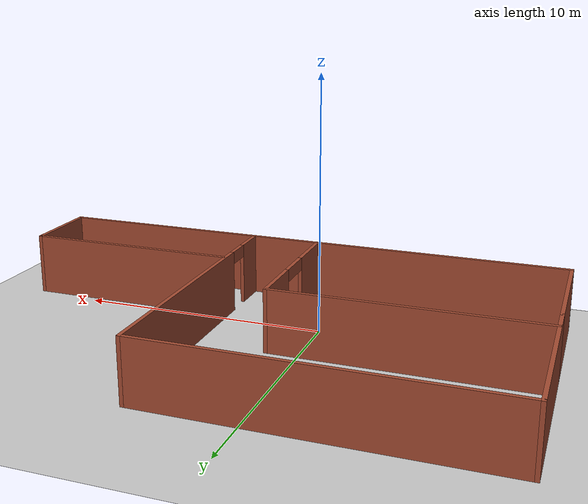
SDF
<sdf version="1.7">
 <world name="default">
  <model name="ground_plane">
   <static>1</static>
   <link name="link">
    <collision name="collision">
     <geometry><plane><normal>0 0 1</normal><size>100 100</size></plane></geometry>
     <surface><friction><ode><mu>100</mu><mu2>50</mu2></ode></friction></surface>
    </collision>
    <visual name="visual">
     <cast_shadows>0</cast_shadows>
     <geometry><plane><normal>0 0 1</normal><size>100 100</size></plane></geometry>
     <material>
      <script><uri>file://media/materials/scripts/gazebo.material</uri><name>Gazebo/Grey</name></script>
     </material>
    </visual>
   </link>
  </model>
  <model name="Simple_world">
   <link name="Wall_0">
    <pose>-4.3 -5.725 0 0 -0 0</pose>
    <visual name="Wall_0_Visual">
     <pose>0 0 1.25 0 -0 0</pose>
     <geometry><box><size>13.25 0.15 2.5</size></box></geometry>
     <material>
      <script><uri>file://media/materials/scripts/gazebo.material</uri><name>Gazebo/Bricks</name></script>
      <ambient>1 1 1 1</ambient>
      <shader type="pixel"/>
     </material>
     <meta><layer>0</layer></meta>
    </visual>
    <collision name="Wall_0_Collision">
     <pose>0 0 1.25 0 -0 0</pose>
     <geometry><box><size>13.25 0.15 2.5</size></box></geometry>
     <surface>
      <friction>
       <ode><mu>1</mu><mu2>1</mu2><fdir1>0 0 0</fdir1><slip1>0</slip1><slip2>0</slip2></ode>
       <torsional>
        <coefficient>1</coefficient>
        <patch_radius>0</patch_radius>
        <surface_radius>0</surface_radius>
        <use_patch_radius>1</use_patch_radius>
        <ode><slip>0</slip></ode>
       </torsional>
      </friction>
      <bounce><restitution_coefficient>0</restitution_coefficient><threshold>1e+06</threshold></bounce>
      <contact>
       <collide_without_contact>0</collide_without_contact>
       <collide_without_contact_bitmask>1</collide_without_contact_bitmask>
       <collide_bitmask>1</collide_bitmask>
       <ode>
        <soft_cfm>0</soft_cfm>
        <soft_erp>0.2</soft_erp>
        <kp>1e+13</kp>
        <kd>1</kd>
        <max_vel>0.01</max_vel>
        <min_depth>0</min_depth>
       </ode>
       <bullet>
        <split_impulse>1</split_impulse>
        <split_impulse_penetration_threshold>-0.01</split_impulse_penetration_threshold>
        <soft_cfm>0</soft_cfm>
        <soft_erp>0.2</soft_erp>
        <kp>1e+13</kp>
        <kd>1</kd>
       </bullet>
      </contact>
     </surface>
    </collision>
   </link>
   <link name="Wall_12">
    <pose>2.25 0 0 0 0 -1.5708</pose>
    <visual name="Wall_12_Visual_0">
     <pose>-1.24262 0 1.25 0 -0 0</pose>
     <geometry><box><size>9.11477 0.15 2.5</size></box></geometry>
     <material>
      <script><uri>file://media/materials/scripts/gazebo.material</uri><name>Gazebo/Bricks</name></script>
      <ambient>1 1 1 1</ambient>
      <shader type="pixel"/>
     </material>
     <meta><layer>0</layer></meta>
    </visual>
    <visual name="Wall_12_Visual_1">
     <pose>5.05739 0 1.25 0 -0 0</pose>
     <geometry><box><size>1.48523 0.15 2.5</size></box></geometry>
     <material>
      <script><uri>file://media/materials/scripts/gazebo.material</uri><name>Gazebo/Bricks</name></script>
      <ambient>1 1 1 1</ambient>
      <shader type="pixel"/>
     </material>
     <meta><layer>0</layer></meta>
    </visual>
    <visual name="Wall_12_Visual_2">
     <pose>3.81477 0 2.25 0 -0 0</pose>
     <geometry><box><size>1 0.15 0.5</size></box></geometry>
     <material>
      <script><uri>file://media/materials/scripts/gazebo.material</uri><name>Gazebo/Bricks</name></script>
      <ambient>1 1 1 1</ambient>
      <shader type="pixel"/>
     </material>
     <meta><layer>0</layer></meta>
    </visual>
    <collision name="Wall_12_Collision_2">
     <pose>3.81477 0 2.25 0 -0 0</pose>
     <geometry><box><size>1 0.15 0.5</size></box></geometry>
     <surface>
      <friction>
       <ode><mu>1</mu><mu2>1</mu2><fdir1>0 0 0</fdir1><slip1>0</slip1><slip2>0</slip2></ode>
       <torsional>
        <coefficient>1</coefficient>
        <patch_radius>0</patch_radius>
        <surface_radius>0</surface_radius>
        <use_patch_radius>1</use_patch_radius>
        <ode><slip>0</slip></ode>
       </torsional>
      </friction>
      <bounce><restitution_coefficient>0</restitution_coefficient><threshold>1e+06</threshold></bounce>
      <contact>
       <collide_without_contact>0</collide_without_contact>
       <collide_without_contact_bitmask>1</collide_without_contact_bitmask>
       <collide_bitmask>1</collide_bitmask>
       <ode>
        <soft_cfm>0</soft_cfm>
        <soft_erp>0.2</soft_erp>
        <kp>1e+13</kp>
        <kd>1</kd>
        <max_vel>0.01</max_vel>
        <min_depth>0</min_depth>
       </ode>
       <bullet>
        <split_impulse>1</split_impulse>
        <split_impulse_penetration_threshold>-0.01</split_impulse_penetration_threshold>
        <soft_cfm>0</soft_cfm>
        <soft_erp>0.2</soft_erp>
        <kp>1e+13</kp>
        <kd>1</kd>
       </bullet>
      </contact>
     </surface>
    </collision>
    <collision name="Wall_12_Collision_1">
     <pose>5.05739 0 1.25 0 -0 0</pose>
     <geometry><box><size>1.48523 0.15 2.5</size></box></geometry>
     <surface>
      <friction>
       <ode><mu>1</mu><mu2>1</mu2><fdir1>0 0 0</fdir1><slip1>0</slip1><slip2>0</slip2></ode>
       <torsional>
        <coefficient>1</coefficient>
        <patch_radius>0</patch_radius>
        <surface_radius>0</surface_radius>
        <use_patch_radius>1</use_patch_radius>
        <ode><slip>0</slip></ode>
       </torsional>
      </friction>
      <bounce><restitution_coefficient>0</restitution_coefficient><threshold>1e+06</threshold></bounce>
      <contact>
       <collide_without_contact>0</collide_without_contact>
       <collide_without_contact_bitmask>1</collide_without_contact_bitmask>
       <collide_bitmask>1</collide_bitmask>
       <ode>
        <soft_cfm>0</soft_cfm>
        <soft_erp>0.2</soft_erp>
        <kp>1e+13</kp>
        <kd>1</kd>
        <max_vel>0.01</max_vel>
        <min_depth>0</min_depth>
       </ode>
       <bullet>
        <split_impulse>1</split_impulse>
        <split_impulse_penetration_threshold>-0.01</split_impulse_penetration_threshold>
        <soft_cfm>0</soft_cfm>
        <soft_erp>0.2</soft_erp>
        <kp>1e+13</kp>
        <kd>1</kd>
       </bullet>
      </contact>
     </surface>
    </collision>
    <collision name="Wall_12_Collision_0">
     <pose>-1.24262 0 1.25 0 -0 0</pose>
     <geometry><box><size>9.11477 0.15 2.5</size></box></geometry>
     <surface>
      <friction>
       <ode><mu>1</mu><mu2>1</mu2><fdir1>0 0 0</fdir1><slip1>0</slip1><slip2>0</slip2></ode>
       <torsional>
        <coefficient>1</coefficient>
        <patch_radius>0</patch_radius>
        <surface_radius>0</surface_radius>
        <use_patch_radius>1</use_patch_radius>
        <ode><slip>0</slip></ode>
       </torsional>
      </friction>
      <bounce><restitution_coefficient>0</restitution_coefficient><threshold>1e+06</threshold></bounce>
      <contact>
       <collide_without_contact>0</collide_without_contact>
       <collide_without_contact_bitmask>1</collide_without_contact_bitmask>
       <collide_bitmask>1</collide_bitmask>
       <ode>
        <soft_cfm>0</soft_cfm>
        <soft_erp>0.2</soft_erp>
        <kp>1e+13</kp>
        <kd>1</kd>
        <max_vel>0.01</max_vel>
        <min_depth>0</min_depth>
       </ode>
       <bullet>
        <split_impulse>1</split_impulse>
        <split_impulse_penetration_threshold>-0.01</split_impulse_penetration_threshold>
        <soft_cfm>0</soft_cfm>
        <soft_erp>0.2</soft_erp>
        <kp>1e+13</kp>
        <kd>1</kd>
       </bullet>
      </contact>
     </surface>
    </collision>
   </link>
   <link name="Wall_13">
    <pose>6.55 -5.725 0 0 -0 0</pose>
    <visual name="Wall_13_Visual">
     <pose>0 0 1.25 0 -0 0</pose>
     <geometry><box><size>8.75 0.15 2.5</size></box></geometry>
     <material>
      <script><uri>file://media/materials/scripts/gazebo.material</uri><name>Gazebo/Bricks</name></script>
      <ambient>1 1 1 1</ambient>
      <shader type="pixel"/>
     </material>
     <meta><layer>0</layer></meta>
    </visual>
    <collision name="Wall_13_Collision">
     <pose>0 0 1.25 0 -0 0</pose>
     <geometry><box><size>8.75 0.15 2.5</size></box></geometry>
     <surface>
      <friction>
       <ode><mu>1</mu><mu2>1</mu2><fdir1>0 0 0</fdir1><slip1>0</slip1><slip2>0</slip2></ode>
       <torsional>
        <coefficient>1</coefficient>
        <patch_radius>0</patch_radius>
        <surface_radius>0</surface_radius>
        <use_patch_radius>1</use_patch_radius>
        <ode><slip>0</slip></ode>
       </torsional>
      </friction>
      <bounce><restitution_coefficient>0</restitution_coefficient><threshold>1e+06</threshold></bounce>
      <contact>
       <collide_without_contact>0</collide_without_contact>
       <collide_without_contact_bitmask>1</collide_without_contact_bitmask>
       <collide_bitmask>1</collide_bitmask>
       <ode>
        <soft_cfm>0</soft_cfm>
        <soft_erp>0.2</soft_erp>
        <kp>1e+13</kp>
        <kd>1</kd>
        <max_vel>0.01</max_vel>
        <min_depth>0</min_depth>
       </ode>
       <bullet>
        <split_impulse>1</split_impulse>
        <split_impulse_penetration_threshold>-0.01</split_impulse_penetration_threshold>
        <soft_cfm>0</soft_cfm>
        <soft_erp>0.2</soft_erp>
        <kp>1e+13</kp>
        <kd>1</kd>
       </bullet>
      </contact>
     </surface>
    </collision>
   </link>
   <link name="Wall_14">
    <pose>10.85 -4.175 0 0 -0 1.5708</pose>
    <visual name="Wall_14_Visual">
     <pose>0 0 1.25 0 -0 0</pose>
     <geometry><box><size>3.25 0.15 2.5</size></box></geometry>
     <material>
      <script><uri>file://media/materials/scripts/gazebo.material</uri><name>Gazebo/Bricks</name></script>
      <ambient>1 1 1 1</ambient>
      <shader type="pixel"/>
     </material>
     <meta><layer>0</layer></meta>
    </visual>
    <collision name="Wall_14_Collision">
     <pose>0 0 1.25 0 -0 0</pose>
     <geometry><box><size>3.25 0.15 2.5</size></box></geometry>
     <surface>
      <friction>
       <ode><mu>1</mu><mu2>1</mu2><fdir1>0 0 0</fdir1><slip1>0</slip1><slip2>0</slip2></ode>
       <torsional>
        <coefficient>1</coefficient>
        <patch_radius>0</patch_radius>
        <surface_radius>0</surface_radius>
        <use_patch_radius>1</use_patch_radius>
        <ode><slip>0</slip></ode>
       </torsional>
      </friction>
      <bounce><restitution_coefficient>0</restitution_coefficient><threshold>1e+06</threshold></bounce>
      <contact>
       <collide_without_contact>0</collide_without_contact>
       <collide_without_contact_bitmask>1</collide_without_contact_bitmask>
       <collide_bitmask>1</collide_bitmask>
       <ode>
        <soft_cfm>0</soft_cfm>
        <soft_erp>0.2</soft_erp>
        <kp>1e+13</kp>
        <kd>1</kd>
        <max_vel>0.01</max_vel>
        <min_depth>0</min_depth>
       </ode>
       <bullet>
        <split_impulse>1</split_impulse>
        <split_impulse_penetration_threshold>-0.01</split_impulse_penetration_threshold>
        <soft_cfm>0</soft_cfm>
        <soft_erp>0.2</soft_erp>
        <kp>1e+13</kp>
        <kd>1</kd>
       </bullet>
      </contact>
     </surface>
    </collision>
   </link>
   <link name="Wall_15">
    <pose>6.55 -2.625 0 0 -0 3.14159</pose>
    <visual name="Wall_15_Visual">
     <pose>0 0 1.25 0 -0 0</pose>
     <geometry><box><size>8.75 0.15 2.5</size></box></geometry>
     <material>
      <script><uri>file://media/materials/scripts/gazebo.material</uri><name>Gazebo/Bricks</name></script>
      <ambient>1 1 1 1</ambient>
      <shader type="pixel"/>
     </material>
     <meta><layer>0</layer></meta>
    </visual>
    <collision name="Wall_15_Collision">
     <pose>0 0 1.25 0 -0 0</pose>
     <geometry><box><size>8.75 0.15 2.5</size></box></geometry>
     <surface>
      <friction>
       <ode><mu>1</mu><mu2>1</mu2><fdir1>0 0 0</fdir1><slip1>0</slip1><slip2>0</slip2></ode>
       <torsional>
        <coefficient>1</coefficient>
        <patch_radius>0</patch_radius>
        <surface_radius>0</surface_radius>
        <use_patch_radius>1</use_patch_radius>
        <ode><slip>0</slip></ode>
       </torsional>
      </friction>
      <bounce><restitution_coefficient>0</restitution_coefficient><threshold>1e+06</threshold></bounce>
      <contact>
       <collide_without_contact>0</collide_without_contact>
       <collide_without_contact_bitmask>1</collide_without_contact_bitmask>
       <collide_bitmask>1</collide_bitmask>
       <ode>
        <soft_cfm>0</soft_cfm>
        <soft_erp>0.2</soft_erp>
        <kp>1e+13</kp>
        <kd>1</kd>
        <max_vel>0.01</max_vel>
        <min_depth>0</min_depth>
       </ode>
       <bullet>
        <split_impulse>1</split_impulse>
        <split_impulse_penetration_threshold>-0.01</split_impulse_penetration_threshold>
        <soft_cfm>0</soft_cfm>
        <soft_erp>0.2</soft_erp>
        <kp>1e+13</kp>
        <kd>1</kd>
       </bullet>
      </contact>
     </surface>
    </collision>
   </link>
   <link name="Wall_18">
    <pose>-0.579032 -2.72339 0 0 -0 1.5708</pose>
    <visual name="Wall_18_Visual_1">
     <pose>1.84221 0 1.25 0 -0 0</pose>
     <geometry><box><size>2.31559 0.15 2.5</size></box></geometry>
     <material>
      <script><uri>file://media/materials/scripts/gazebo.material</uri><name>Gazebo/Bricks</name></script>
      <ambient>1 1 1 1</ambient>
      <shader type="pixel"/>
     </material>
     <meta><layer>0</layer></meta>
    </visual>
    <visual name="Wall_18_Visual_2">
     <pose>-0.065589 0 2.25 0 -0 0</pose>
     <geometry><box><size>1.5 0.15 0.5</size></box></geometry>
     <material>
      <script><uri>file://media/materials/scripts/gazebo.material</uri><name>Gazebo/Bricks</name></script>
      <ambient>1 1 1 1</ambient>
      <shader type="pixel"/>
     </material>
     <meta><layer>0</layer></meta>
    </visual>
    <visual name="Wall_18_Visual_0">
     <pose>-1.90779 0 1.25 0 -0 0</pose>
     <geometry><box><size>2.18441 0.15 2.5</size></box></geometry>
     <material>
      <script><uri>file://media/materials/scripts/gazebo.material</uri><name>Gazebo/Bricks</name></script>
      <ambient>1 1 1 1</ambient>
      <shader type="pixel"/>
     </material>
     <meta><layer>0</layer></meta>
    </visual>
    <collision name="Wall_18_Collision_1">
     <pose>1.84221 0 1.25 0 -0 0</pose>
     <geometry><box><size>2.31559 0.15 2.5</size></box></geometry>
     <surface>
      <friction>
       <ode><mu>1</mu><mu2>1</mu2><fdir1>0 0 0</fdir1><slip1>0</slip1><slip2>0</slip2></ode>
       <torsional>
        <coefficient>1</coefficient>
        <patch_radius>0</patch_radius>
        <surface_radius>0</surface_radius>
        <use_patch_radius>1</use_patch_radius>
        <ode><slip>0</slip></ode>
       </torsional>
      </friction>
      <bounce><restitution_coefficient>0</restitution_coefficient><threshold>1e+06</threshold></bounce>
      <contact>
       <collide_without_contact>0</collide_without_contact>
       <collide_without_contact_bitmask>1</collide_without_contact_bitmask>
       <collide_bitmask>1</collide_bitmask>
       <ode>
        <soft_cfm>0</soft_cfm>
        <soft_erp>0.2</soft_erp>
        <kp>1e+13</kp>
        <kd>1</kd>
        <max_vel>0.01</max_vel>
        <min_depth>0</min_depth>
       </ode>
       <bullet>
        <split_impulse>1</split_impulse>
        <split_impulse_penetration_threshold>-0.01</split_impulse_penetration_threshold>
        <soft_cfm>0</soft_cfm>
        <soft_erp>0.2</soft_erp>
        <kp>1e+13</kp>
        <kd>1</kd>
       </bullet>
      </contact>
     </surface>
    </collision>
    <collision name="Wall_18_Collision_2">
     <pose>-0.065589 0 2.25 0 -0 0</pose>
     <geometry><box><size>1.5 0.15 0.5</size></box></geometry>
     <surface>
      <friction>
       <ode><mu>1</mu><mu2>1</mu2><fdir1>0 0 0</fdir1><slip1>0</slip1><slip2>0</slip2></ode>
       <torsional>
        <coefficient>1</coefficient>
        <patch_radius>0</patch_radius>
        <surface_radius>0</surface_radius>
        <use_patch_radius>1</use_patch_radius>
        <ode><slip>0</slip></ode>
       </torsional>
      </friction>
      <bounce><restitution_coefficient>0</restitution_coefficient><threshold>1e+06</threshold></bounce>
      <contact>
       <collide_without_contact>0</collide_without_contact>
       <collide_without_contact_bitmask>1</collide_without_contact_bitmask>
       <collide_bitmask>1</collide_bitmask>
       <ode>
        <soft_cfm>0</soft_cfm>
        <soft_erp>0.2</soft_erp>
        <kp>1e+13</kp>
        <kd>1</kd>
        <max_vel>0.01</max_vel>
        <min_depth>0</min_depth>
       </ode>
       <bullet>
        <split_impulse>1</split_impulse>
        <split_impulse_penetration_threshold>-0.01</split_impulse_penetration_threshold>
        <soft_cfm>0</soft_cfm>
        <soft_erp>0.2</soft_erp>
        <kp>1e+13</kp>
        <kd>1</kd>
       </bullet>
      </contact>
     </surface>
    </collision>
    <collision name="Wall_18_Collision_0">
     <pose>-1.90779 0 1.25 0 -0 0</pose>
     <geometry><box><size>2.18441 0.15 2.5</size></box></geometry>
     <surface>
      <friction>
       <ode><mu>1</mu><mu2>1</mu2><fdir1>0 0 0</fdir1><slip1>0</slip1><slip2>0</slip2></ode>
       <torsional>
        <coefficient>1</coefficient>
        <patch_radius>0</patch_radius>
        <surface_radius>0</surface_radius>
        <use_patch_radius>1</use_patch_radius>
        <ode><slip>0</slip></ode>
       </torsional>
      </friction>
      <bounce><restitution_coefficient>0</restitution_coefficient><threshold>1e+06</threshold></bounce>
      <contact>
       <collide_without_contact>0</collide_without_contact>
       <collide_without_contact_bitmask>1</collide_without_contact_bitmask>
       <collide_bitmask>1</collide_bitmask>
       <ode>
        <soft_cfm>0</soft_cfm>
        <soft_erp>0.2</soft_erp>
        <kp>1e+13</kp>
        <kd>1</kd>
        <max_vel>0.01</max_vel>
        <min_depth>0</min_depth>
       </ode>
       <bullet>
        <split_impulse>1</split_impulse>
        <split_impulse_penetration_threshold>-0.01</split_impulse_penetration_threshold>
        <soft_cfm>0</soft_cfm>
        <soft_erp>0.2</soft_erp>
        <kp>1e+13</kp>
        <kd>1</kd>
       </bullet>
      </contact>
     </surface>
    </collision>
   </link>
   <link name="Wall_19">
    <pose>-5.70403 0.201612 0 0 -0 3.14159</pose>
    <visual name="Wall_19_Visual">
     <pose>0 0 1.25 0 -0 0</pose>
     <geometry><box><size>10.4 0.15 2.5</size></box></geometry>
     <material>
      <script><uri>file://media/materials/scripts/gazebo.material</uri><name>Gazebo/Bricks</name></script>
      <ambient>1 1 1 1</ambient>
      <shader type="pixel"/>
     </material>
     <meta><layer>0</layer></meta>
    </visual>
    <collision name="Wall_19_Collision">
     <pose>0 0 1.25 0 -0 0</pose>
     <geometry><box><size>10.4 0.15 2.5</size></box></geometry>
     <surface>
      <friction>
       <ode><mu>1</mu><mu2>1</mu2><fdir1>0 0 0</fdir1><slip1>0</slip1><slip2>0</slip2></ode>
       <torsional>
        <coefficient>1</coefficient>
        <patch_radius>0</patch_radius>
        <surface_radius>0</surface_radius>
        <use_patch_radius>1</use_patch_radius>
        <ode><slip>0</slip></ode>
       </torsional>
      </friction>
      <bounce><restitution_coefficient>0</restitution_coefficient><threshold>1e+06</threshold></bounce>
      <contact>
       <collide_without_contact>0</collide_without_contact>
       <collide_without_contact_bitmask>1</collide_without_contact_bitmask>
       <collide_bitmask>1</collide_bitmask>
       <ode>
        <soft_cfm>0</soft_cfm>
        <soft_erp>0.2</soft_erp>
        <kp>1e+13</kp>
        <kd>1</kd>
        <max_vel>0.01</max_vel>
        <min_depth>0</min_depth>
       </ode>
       <bullet>
        <split_impulse>1</split_impulse>
        <split_impulse_penetration_threshold>-0.01</split_impulse_penetration_threshold>
        <soft_cfm>0</soft_cfm>
        <soft_erp>0.2</soft_erp>
        <kp>1e+13</kp>
        <kd>1</kd>
       </bullet>
      </contact>
     </surface>
    </collision>
   </link>
   <link name="Wall_2">
    <pose>-10.85 -3.3 0 0 -0 1.5708</pose>
    <visual name="Wall_2_Visual">
     <pose>0 0 1.25 0 -0 0</pose>
     <geometry><box><size>5 0.15 2.5</size></box></geometry>
     <material>
      <script><uri>file://media/materials/scripts/gazebo.material</uri><name>Gazebo/Bricks</name></script>
      <ambient>1 1 1 1</ambient>
      <shader type="pixel"/>
     </material>
     <meta><layer>0</layer></meta>
    </visual>
    <collision name="Wall_2_Collision">
     <pose>0 0 1.25 0 -0 0</pose>
     <geometry><box><size>5 0.15 2.5</size></box></geometry>
     <surface>
      <friction>
       <ode><mu>1</mu><mu2>1</mu2><fdir1>0 0 0</fdir1><slip1>0</slip1><slip2>0</slip2></ode>
       <torsional>
        <coefficient>1</coefficient>
        <patch_radius>0</patch_radius>
        <surface_radius>0</surface_radius>
        <use_patch_radius>1</use_patch_radius>
        <ode><slip>0</slip></ode>
       </torsional>
      </friction>
      <bounce><restitution_coefficient>0</restitution_coefficient><threshold>1e+06</threshold></bounce>
      <contact>
       <collide_without_contact>0</collide_without_contact>
       <collide_without_contact_bitmask>1</collide_without_contact_bitmask>
       <collide_bitmask>1</collide_bitmask>
       <ode>
        <soft_cfm>0</soft_cfm>
        <soft_erp>0.2</soft_erp>
        <kp>1e+13</kp>
        <kd>1</kd>
        <max_vel>0.01</max_vel>
        <min_depth>0</min_depth>
       </ode>
       <bullet>
        <split_impulse>1</split_impulse>
        <split_impulse_penetration_threshold>-0.01</split_impulse_penetration_threshold>
        <soft_cfm>0</soft_cfm>
        <soft_erp>0.2</soft_erp>
        <kp>1e+13</kp>
        <kd>1</kd>
       </bullet>
      </contact>
     </surface>
    </collision>
   </link>
   <link name="Wall_6">
    <pose>-10.85 2.425 0 0 -0 1.5708</pose>
    <visual name="Wall_6_Visual">
     <pose>0 0 1.25 0 -0 0</pose>
     <geometry><box><size>6.75 0.15 2.5</size></box></geometry>
     <material>
      <script><uri>file://media/materials/scripts/gazebo.material</uri><name>Gazebo/Bricks</name></script>
      <ambient>1 1 1 1</ambient>
      <shader type="pixel"/>
     </material>
     <meta><layer>0</layer></meta>
    </visual>
    <collision name="Wall_6_Collision">
     <pose>0 0 1.25 0 -0 0</pose>
     <geometry><box><size>6.75 0.15 2.5</size></box></geometry>
     <surface>
      <friction>
       <ode><mu>1</mu><mu2>1</mu2><fdir1>0 0 0</fdir1><slip1>0</slip1><slip2>0</slip2></ode>
       <torsional>
        <coefficient>1</coefficient>
        <patch_radius>0</patch_radius>
        <surface_radius>0</surface_radius>
        <use_patch_radius>1</use_patch_radius>
        <ode><slip>0</slip></ode>
       </torsional>
      </friction>
      <bounce><restitution_coefficient>0</restitution_coefficient><threshold>1e+06</threshold></bounce>
      <contact>
       <collide_without_contact>0</collide_without_contact>
       <collide_without_contact_bitmask>1</collide_without_contact_bitmask>
       <collide_bitmask>1</collide_bitmask>
       <ode>
        <soft_cfm>0</soft_cfm>
        <soft_erp>0.2</soft_erp>
        <kp>1e+13</kp>
        <kd>1</kd>
        <max_vel>0.01</max_vel>
        <min_depth>0</min_depth>
       </ode>
       <bullet>
        <split_impulse>1</split_impulse>
        <split_impulse_penetration_threshold>-0.01</split_impulse_penetration_threshold>
        <soft_cfm>0</soft_cfm>
        <soft_erp>0.2</soft_erp>
        <kp>1e+13</kp>
        <kd>1</kd>
       </bullet>
      </contact>
     </surface>
    </collision>
   </link>
   <link name="Wall_7">
    <pose>-4.3 5.725 0 0 -0 0</pose>
    <visual name="Wall_7_Visual">
     <pose>0 0 1.25 0 -0 0</pose>
     <geometry><box><size>13.25 0.15 2.5</size></box></geometry>
     <material>
      <script><uri>file://media/materials/scripts/gazebo.material</uri><name>Gazebo/Bricks</name></script>
      <ambient>1 1 1 1</ambient>
      <shader type="pixel"/>
     </material>
     <meta><layer>0</layer></meta>
    </visual>
    <collision name="Wall_7_Collision">
     <pose>0 0 1.25 0 -0 0</pose>
     <geometry><box><size>13.25 0.15 2.5</size></box></geometry>
     <surface>
      <friction>
       <ode><mu>1</mu><mu2>1</mu2><fdir1>0 0 0</fdir1><slip1>0</slip1><slip2>0</slip2></ode>
       <torsional>
        <coefficient>1</coefficient>
        <patch_radius>0</patch_radius>
        <surface_radius>0</surface_radius>
        <use_patch_radius>1</use_patch_radius>
        <ode><slip>0</slip></ode>
       </torsional>
      </friction>
      <bounce><restitution_coefficient>0</restitution_coefficient><threshold>1e+06</threshold></bounce>
      <contact>
       <collide_without_contact>0</collide_without_contact>
       <collide_without_contact_bitmask>1</collide_without_contact_bitmask>
       <collide_bitmask>1</collide_bitmask>
       <ode>
        <soft_cfm>0</soft_cfm>
        <soft_erp>0.2</soft_erp>
        <kp>1e+13</kp>
        <kd>1</kd>
        <max_vel>0.01</max_vel>
        <min_depth>0</min_depth>
       </ode>
       <bullet>
        <split_impulse>1</split_impulse>
        <split_impulse_penetration_threshold>-0.01</split_impulse_penetration_threshold>
        <soft_cfm>0</soft_cfm>
        <soft_erp>0.2</soft_erp>
        <kp>1e+13</kp>
        <kd>1</kd>
       </bullet>
      </contact>
     </surface>
    </collision>
   </link>
   <static>1</static>
   <pose>1.81774 2.29441 0 0 -0 0</pose>
  </model>
 </world>
</sdf>
